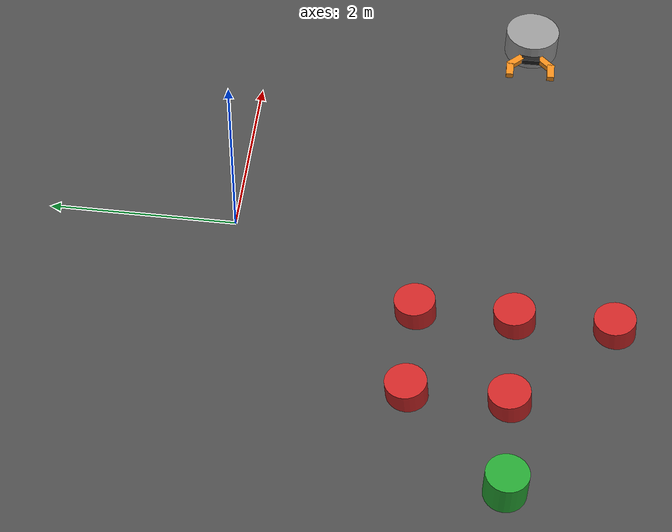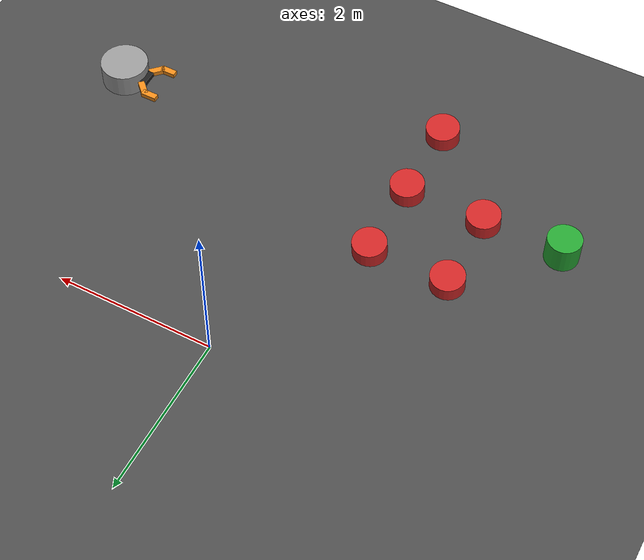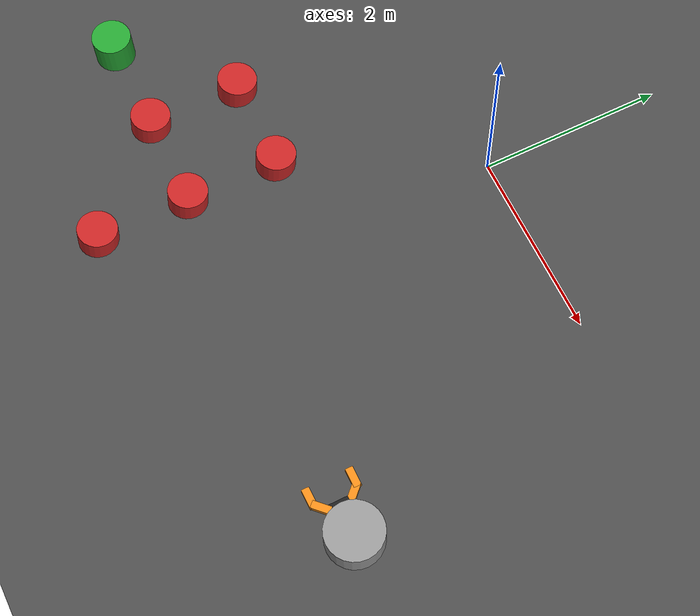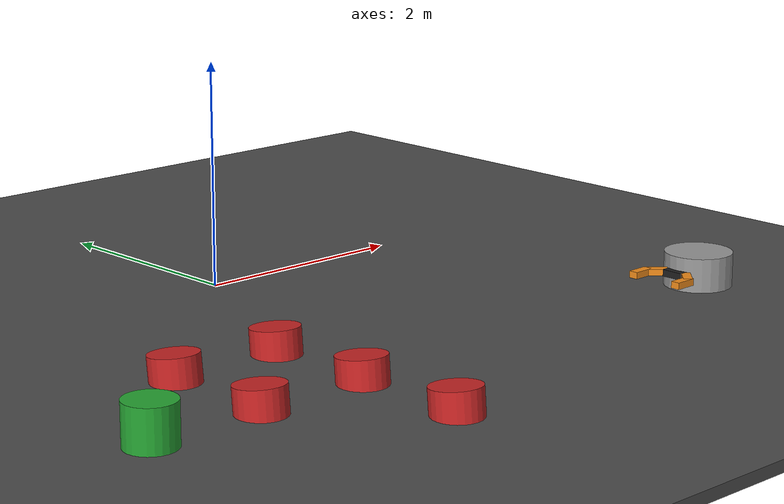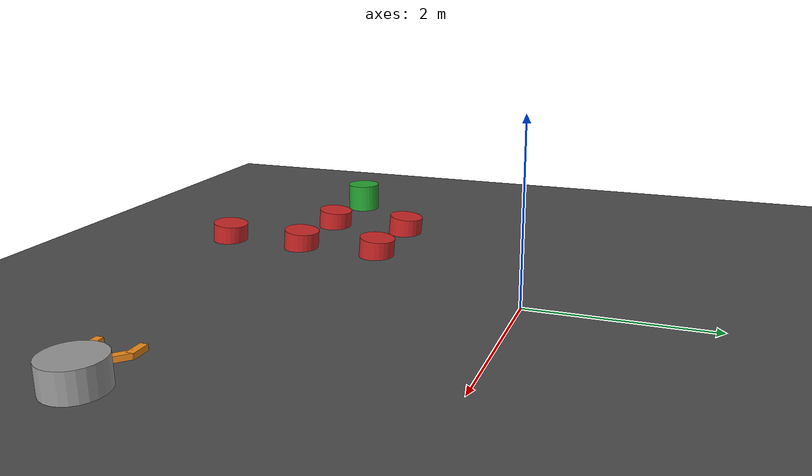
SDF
<sdf version="1.4">
 <world name="default">
  <light name="sun" type="directional">
   <pose>0 0 10 0 -0 0</pose>
   <diffuse>0.8 0.8 0.8 1</diffuse>
   <specular>0.2 0.2 0.2 1</specular>
   <attenuation>
    <range>1000</range>
    <constant>0.9</constant>
    <linear>0.01</linear>
    <quadratic>0.001</quadratic>
   </attenuation>
   <direction>-0.5 0.1 -0.9</direction>
  </light>
  <model name="ground_plane">
   <static>1</static>
   <link name="link">
    <collision name="collision">
     <geometry><plane><normal>0 0 1</normal><size>100 100</size></plane></geometry>
     <surface><friction><ode><mu>100</mu><mu2>50</mu2></ode></friction></surface>
    </collision>
    <visual name="visual">
     <cast_shadows>0</cast_shadows>
     <geometry><plane><normal>0 0 1</normal><size>100 100</size></plane></geometry>
     <material>
      <script><uri>file://media/materials/scripts/gazebo.material</uri><name>Gazebo/Grey</name></script>
     </material>
    </visual>
    <velocity_decay><linear>0</linear><angular>0</angular></velocity_decay>
   </link>
  </model>
  <physics type="ode">
   <max_step_size>0.001</max_step_size>
   <real_time_factor>1</real_time_factor>
   <real_time_update_rate>1000</real_time_update_rate>
   <gravity>0 0 -9.8</gravity>
  </physics>
  <scene><ambient>0.4 0.4 0.4 1</ambient><background>0.7 0.7 0.7 1</background><shadows>1</shadows></scene>
  <spherical_coordinates>
   <surface_model>EARTH_WGS84</surface_model>
   <latitude_deg>0</latitude_deg>
   <longitude_deg>0</longitude_deg>
   <elevation>0</elevation>
   <heading_deg>0</heading_deg>
  </spherical_coordinates>
  <model name="movable_2">
   <link name="link">
    <pose>0 0 0.23 0 -0 0</pose>
    <collision name="collision">
     <geometry><cylinder><radius>0.0001</radius><length>0.001</length></cylinder></geometry>
    </collision>
    <visual name="visual">
     <geometry><cylinder><radius>0.21</radius><length>0.45</length></cylinder></geometry>
     <material>
      <script><uri>file://media/materials/scripts/gazebo.material</uri><name>Gazebo/Red</name></script>
     </material>
    </visual>
    <velocity_decay><linear>0</linear><angular>0</angular></velocity_decay>
    <inertial>
     <inertia><ixx>1</ixx><ixy>0</ixy><ixz>0</ixz><iyy>1</iyy><iyz>0</iyz><izz>1</izz></inertia>
     <mass>1</mass>
    </inertial>
   </link>
   <pose>-1.00214 -4.02158 -0.178474 -0.094164 0.009225 -0.001491</pose>
   <static>0</static>
  </model>
  <model name="movable_3">
   <link name="link">
    <pose>0 0 0.23 0 -0 0</pose>
    <collision name="collision">
     <geometry><cylinder><radius>0.0001</radius><length>0.001</length></cylinder></geometry>
    </collision>
    <visual name="visual">
     <geometry><cylinder><radius>0.21</radius><length>0.45</length></cylinder></geometry>
     <material>
      <script><uri>file://media/materials/scripts/gazebo.material</uri><name>Gazebo/Red</name></script>
     </material>
    </visual>
    <velocity_decay><linear>0</linear><angular>0</angular></velocity_decay>
    <inertial>
     <inertia><ixx>1</ixx><ixy>0</ixy><ixz>0</ixz><iyy>1</iyy><iyz>0</iyz><izz>1</izz></inertia>
     <mass>1</mass>
    </inertial>
   </link>
   <pose>-1.00242 -3.0214 -0.178488 -0.093384 0.010457 -0.001492</pose>
   <static>0</static>
  </model>
  <model name="movable_4">
   <link name="link">
    <pose>0 0 0.23 0 -0 0</pose>
    <collision name="collision">
     <geometry><cylinder><radius>0.0001</radius><length>0.001</length></cylinder></geometry>
    </collision>
    <visual name="visual">
     <geometry><cylinder><radius>0.21</radius><length>0.45</length></cylinder></geometry>
     <material>
      <script><uri>file://media/materials/scripts/gazebo.material</uri><name>Gazebo/Red</name></script>
     </material>
    </visual>
    <velocity_decay><linear>0</linear><angular>0</angular></velocity_decay>
    <inertial>
     <inertia><ixx>1</ixx><ixy>0</ixy><ixz>0</ixz><iyy>1</iyy><iyz>0</iyz><izz>1</izz></inertia>
     <mass>1</mass>
    </inertial>
   </link>
   <pose>-1.00221 -2.02156 -0.178474 -0.094112 0.009546 -0.001496</pose>
   <static>0</static>
  </model>
  <model name="movable_0">
   <link name="link">
    <pose>0 0 0.23 0 -0 0</pose>
    <collision name="collision">
     <geometry><cylinder><radius>0.0001</radius><length>0.001</length></cylinder></geometry>
    </collision>
    <visual name="visual">
     <geometry><cylinder><radius>0.21</radius><length>0.45</length></cylinder></geometry>
     <material>
      <script><uri>file://media/materials/scripts/gazebo.material</uri><name>Gazebo/Red</name></script>
     </material>
    </visual>
    <velocity_decay><linear>0</linear><angular>0</angular></velocity_decay>
    <inertial>
     <inertia><ixx>1</ixx><ixy>0</ixy><ixz>0</ixz><iyy>1</iyy><iyz>0</iyz><izz>1</izz></inertia>
     <mass>1</mass>
    </inertial>
   </link>
   <pose>-2.00154 -3.02169 -0.178458 -0.094651 0.006587 -0.001452</pose>
   <static>0</static>
  </model>
  <model name="movable">
   <link name="link">
    <pose>0 0 0.23 0 -0 0</pose>
    <collision name="collision">
     <geometry><cylinder><radius>0.0001</radius><length>0.001</length></cylinder></geometry>
    </collision>
    <visual name="visual">
     <geometry><cylinder><radius>0.21</radius><length>0.45</length></cylinder></geometry>
     <material>
      <script><uri>file://media/materials/scripts/gazebo.material</uri><name>Gazebo/Red</name></script>
     </material>
    </visual>
    <velocity_decay><linear>0</linear><angular>0</angular></velocity_decay>
    <inertial>
     <inertia><ixx>1</ixx><ixy>0</ixy><ixz>0</ixz><iyy>1</iyy><iyz>0</iyz><izz>1</izz></inertia>
     <mass>1</mass>
    </inertial>
   </link>
   <pose>-1.99866 -2.02396 -0.178232 -0.104565 -0.006036 -0.001347</pose>
   <static>0</static>
  </model>
  <model name="asphalt_plane">
   <static>1</static>
   <link name="link">
    <collision name="collision"><geometry><box><size>20 20 0.1</size></box></geometry></collision>
    <visual name="visual">
     <cast_shadows>0</cast_shadows>
     <geometry><box><size>20 20 0.1</size></box></geometry>
     <material>
      <script>
       <uri>model://asphalt_plane/materials/scripts</uri>
       <uri>model://asphalt_plane/materials/textures</uri>
       <name>vrc/asphalt</name>
      </script>
     </material>
    </visual>
    <velocity_decay><linear>0</linear><angular>0</angular></velocity_decay>
   </link>
  </model>
  <model name="coke_can">
   <pose>-3.00025 -2.99981 0.225008 -3.6e-05 -1.7e-05 7e-05</pose>
   <link name="gl_">
    <collision name="collision">
     <geometry><cylinder><radius>0.21</radius><length>0.35</length></cylinder></geometry>
    </collision>
    <visual name="visual">
     <geometry><cylinder><radius>0.21</radius><length>0.35</length></cylinder></geometry>
     <material>
      <script><uri>file://media/materials/scripts/gazebo.material</uri><name>Gazebo/Green</name></script>
     </material>
    </visual>
    <velocity_decay><linear>0</linear><angular>0</angular></velocity_decay>
    <inertial>
     <inertia><ixx>1</ixx><ixy>0</ixy><ixz>0</ixz><iyy>1</iyy><iyz>0</iyz><izz>1</izz></inertia>
     <mass>1</mass>
    </inertial>
   </link>
   <static>0</static>
  </model>
  <model name="a_robot_big">
   <link name="bug">
    <pose>0 0 0.1 0 -0 0</pose>
    <collision name="collision">
     <geometry><cylinder><radius>0.3</radius><length>0.3</length></cylinder></geometry>
    </collision>
    <visual name="visual">
     <geometry><cylinder><radius>0.3</radius><length>0.3</length></cylinder></geometry>
     <material>
      <script><uri>file://media/materials/scripts/gazebo.material</uri><name>Gazebo/Grey</name></script>
     </material>
    </visual>
    <velocity_decay><linear>0</linear><angular>0</angular></velocity_decay>
    <inertial>
     <inertia><ixx>1</ixx><ixy>0</ixy><ixz>0</ixz><iyy>1</iyy><iyz>0</iyz><izz>1</izz></inertia>
     <mass>1</mass>
    </inertial>
   </link>
   <link name="link2">
    <pose>0.15 0 0.4 0 -0 0</pose>
    <collision name="collision2">
     <geometry><cylinder><radius>0.45</radius><length>0.05</length></cylinder></geometry>
    </collision>
    <visual name="visual">
     <geometry><cylinder><radius>0</radius><length>0</length></cylinder></geometry>
     <material>
      <script><uri>file://media/materials/scripts/gazebo.material</uri><name>Gazebo/Grey</name></script>
     </material>
    </visual>
    <sensor name="gripper_contact_sensor" type="contact">
     <always_on>1</always_on>
     <update_rate>100</update_rate>
     <contact><collision>collision2</collision><topic>__default_topic__</topic></contact>
     <plugin name="gripper_bumper" filename="libgazebo_ros_bumper.so">
      <bumperTopicName>bumper</bumperTopicName>
      <frameName>link2</frameName>
     </plugin>
    </sensor>
    <velocity_decay><linear>0</linear><angular>0</angular></velocity_decay>
    <inertial>
     <inertia><ixx>1</ixx><ixy>0</ixy><ixz>0</ixz><iyy>1</iyy><iyz>0</iyz><izz>1</izz></inertia>
     <mass>1</mass>
    </inertial>
   </link>
   <joint name="joint" type="revolute">
    <child>bug</child>
    <parent>link2</parent>
    <axis><limit><lower>0</lower><upper>0</upper></limit><xyz>0 0 -1</xyz></axis>
   </joint>
   <link name="gripper_big::palm">
    <pose>0.32 0 0.1 0 -0 0</pose>
    <inertial>
     <mass>0.002</mass>
     <inertia><ixx>1</ixx><ixy>0</ixy><ixz>0</ixz><iyy>1</iyy><iyz>0</iyz><izz>1</izz></inertia>
    </inertial>
    <collision name="collision">
     <geometry><box><size>0.08 0.2 0.06</size></box></geometry>
     <surface>
      <friction><ode><mu>0.1</mu><mu2>0</mu2></ode></friction>
      <contact><ode><max_vel>0</max_vel></ode></contact>
     </surface>
    </collision>
    <visual name="visual">
     <geometry><box><size>0.08 0.2 0.06</size></box></geometry>
     <material>
      <script><uri>file://media/materials/scripts/gazebo.material</uri><name>Gazebo/Black</name></script>
     </material>
    </visual>
    <velocity_decay><linear>0</linear><angular>0</angular></velocity_decay>
   </link>
   <link name="gripper_big::left_finger">
    <pose>0.37 0.17 0.1 0 0 -0.78539</pose>
    <inertial>
     <mass>0.001</mass>
     <inertia><ixx>0.001</ixx><ixy>0</ixy><ixz>0</ixz><iyy>0.001</iyy><iyz>0</iyz><izz>0.001</izz></inertia>
    </inertial>
    <collision name="collision">
     <geometry><box><size>0.08 0.2 0.06</size></box></geometry>
     <surface>
      <friction><ode><mu>0.1</mu><mu2>0</mu2></ode></friction>
      <contact><ode><max_vel>0</max_vel></ode></contact>
     </surface>
    </collision>
    <visual name="visual">
     <geometry><box><size>0.08 0.2 0.06</size></box></geometry>
     <material>
      <script><uri>file://media/materials/scripts/gazebo.material</uri><name>Gazebo/Orange</name></script>
     </material>
    </visual>
    <velocity_decay><linear>0</linear><angular>0</angular></velocity_decay>
   </link>
   <link name="gripper_big::gl">
    <pose>0.503 0.23 0.1 0 -0 1.5707</pose>
    <inertial>
     <mass>0.001</mass>
     <inertia><ixx>0.001</ixx><ixy>0</ixy><ixz>0</ixz><iyy>0.001</iyy><iyz>0</iyz><izz>0.001</izz></inertia>
    </inertial>
    <collision name="collision">
     <geometry><box><size>0.08 0.2 0.06</size></box></geometry>
     <surface>
      <friction><ode><mu>0.1</mu><mu2>0</mu2></ode></friction>
      <contact><ode><max_vel>0</max_vel></ode></contact>
     </surface>
    </collision>
    <visual name="visual">
     <geometry><box><size>0.08 0.2 0.06</size></box></geometry>
     <material>
      <script><uri>file://media/materials/scripts/gazebo.material</uri><name>Gazebo/Orange</name></script>
     </material>
    </visual>
    <velocity_decay><linear>0</linear><angular>0</angular></velocity_decay>
   </link>
   <link name="gripper_big::right_finger">
    <pose>0.37 -0.17 0.1 0 -0 0.78539</pose>
    <inertial>
     <mass>0.001</mass>
     <inertia><ixx>0.001</ixx><ixy>0</ixy><ixz>0</ixz><iyy>0.001</iyy><iyz>0</iyz><izz>0.001</izz></inertia>
    </inertial>
    <collision name="collision">
     <geometry><box><size>0.08 0.2 0.06</size></box></geometry>
     <surface>
      <friction><ode><mu>0.1</mu><mu2>0</mu2></ode></friction>
      <contact><ode><max_vel>0</max_vel></ode></contact>
     </surface>
    </collision>
    <visual name="visual">
     <geometry><box><size>0.08 0.2 0.06</size></box></geometry>
     <material>
      <script><uri>file://media/materials/scripts/gazebo.material</uri><name>Gazebo/Orange</name></script>
     </material>
    </visual>
    <velocity_decay><linear>0</linear><angular>0</angular></velocity_decay>
   </link>
   <link name="gripper_big::gr">
    <pose>0.503 -0.23 0.1 0 -0 1.5707</pose>
    <inertial>
     <mass>0.001</mass>
     <inertia><ixx>0.001</ixx><ixy>0</ixy><ixz>0</ixz><iyy>0.001</iyy><iyz>0</iyz><izz>0.001</izz></inertia>
    </inertial>
    <collision name="collision">
     <geometry><box><size>0.08 0.2 0.06</size></box></geometry>
     <surface>
      <friction><ode><mu>0.1</mu><mu2>0</mu2></ode></friction>
      <contact><ode><max_vel>0</max_vel></ode></contact>
     </surface>
    </collision>
    <visual name="visual">
     <geometry><box><size>0.08 0.2 0.06</size></box></geometry>
     <material>
      <script><uri>file://media/materials/scripts/gazebo.material</uri><name>Gazebo/Orange</name></script>
     </material>
    </visual>
    <velocity_decay><linear>0</linear><angular>0</angular></velocity_decay>
   </link>
   <joint name="gripper_big::left_finger" type="revolute">
    <pose>0 -0.075 0 0 -0 0</pose>
    <child>gripper_big::left_finger</child>
    <parent>gripper_big::palm</parent>
    <axis><limit><lower>-0.2</lower><upper>0.4</upper></limit><xyz>0 0 -1</xyz></axis>
   </joint>
   <joint name="gripper_big::gl" type="revolute">
    <pose>0 0.05 0 0 -0 0</pose>
    <child>gripper_big::gl</child>
    <parent>gripper_big::left_finger</parent>
    <axis><limit><lower>0</lower><upper>0.4</upper></limit><xyz>0 0 -1</xyz></axis>
   </joint>
   <joint name="gripper_big::right_finger" type="revolute">
    <pose>0 0.075 0 0 -0 0</pose>
    <child>gripper_big::right_finger</child>
    <parent>gripper_big::palm</parent>
    <axis><limit><lower>-0.2</lower><upper>0.4</upper></limit><xyz>0 0 1</xyz></axis>
   </joint>
   <joint name="gripper_big::gr" type="revolute">
    <pose>0 0.05 0 0 -0 0</pose>
    <child>gripper_big::gr</child>
    <parent>gripper_big::right_finger</parent>
    <axis><limit><lower>0</lower><upper>0.4</upper></limit><xyz>0 0 1</xyz></axis>
   </joint>
   <joint name="arm_gripper_joint" type="revolute">
    <parent>bug</parent>
    <child>gripper_big::palm</child>
    <axis><limit><lower>0</lower><upper>0</upper></limit><xyz>0 0 1</xyz></axis>
   </joint>
   <plugin name="object_controller" filename="libgazebo_ros_planar_move.so">
    <commandTopic>cmd_vel</commandTopic>
    <odometryTopic>odom</odometryTopic>
    <odometryFrame>odom</odometryFrame>
    <odometryRate>20.0</odometryRate>
    <robotBaseFrame>bug</robotBaseFrame>
   </plugin>
   <pose>2.99985 -3.00017 0.1 0 -0 -3.13844</pose>
   <static>0</static>
  </model>
 </world>
</sdf>
